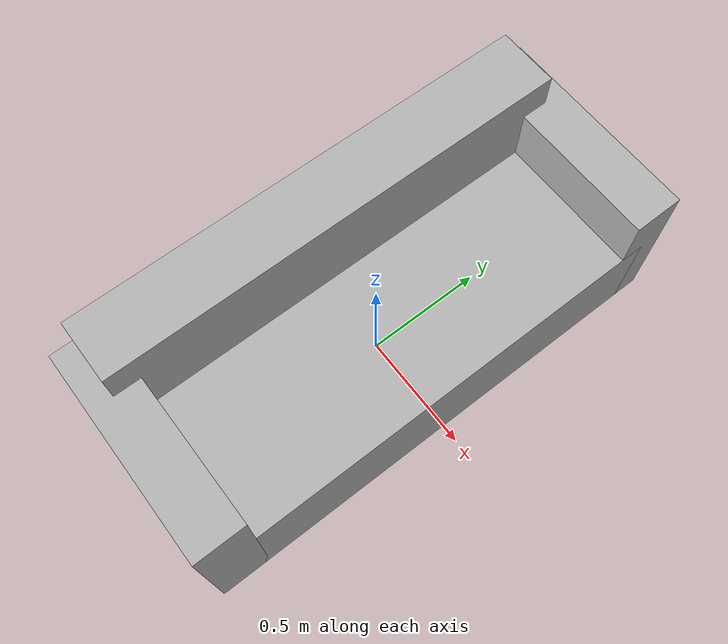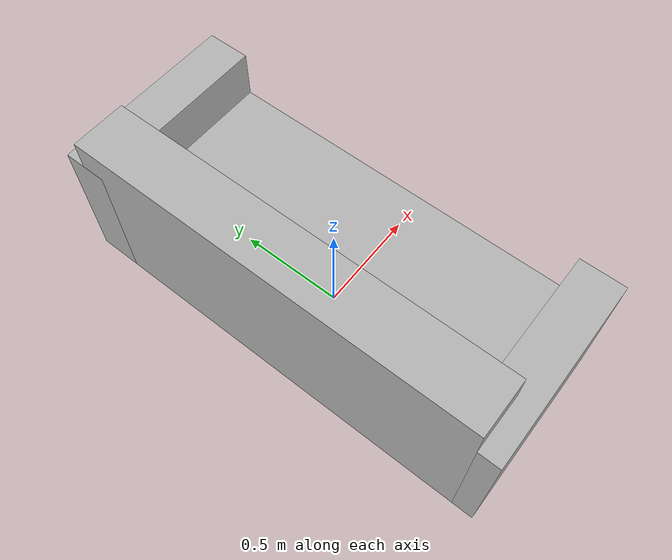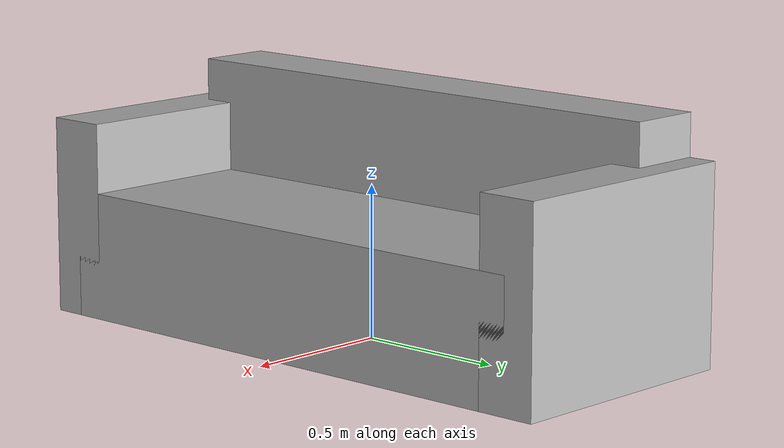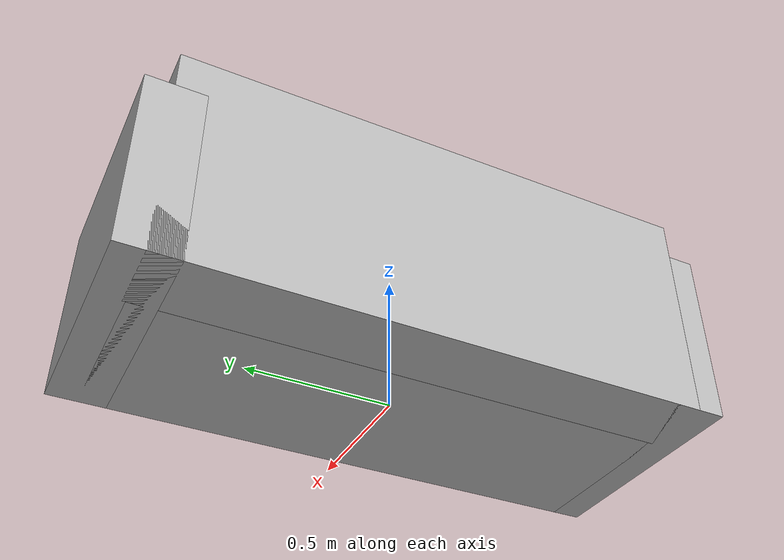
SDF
<?xml version="1.0"?>
<sdf version="1.6">
  <model name="impuls/couch_long">
    <link name="back">
      <collision name="back_col">
        <geometry>
          <box>
            <size>0.25 1.86 0.79</size>
          </box>
        </geometry>
      </collision>
      <visual name="back_vis">
        <geometry>
          <box>
            <size>0.25 1.86 0.79</size>
          </box>
        </geometry>
      </visual>
      <pose>-0.30 0.0 0.395 0 0 0</pose>
    </link>
    <link name="in_front_of">
      <virtual_volume name="in_front_of_vv">
        <geometry>
          <box>
            <size>0.2 1.6 0.01</size>
          </box>
        </geometry>
        <pose>0.65 0.0 0.005 0 0 0</pose>
      </virtual_volume>
    </link>
    <link name="side_left">
     <collision name="side_left_col">
        <geometry>
          <box>
            <size>0.85 0.20 0.65</size>
          </box>
        </geometry>
      </collision>
      <visual name="side_left_vis">
        <geometry>
          <box>
            <size>0.85 0.20 0.65</size>
          </box>
        </geometry>
      </visual>
      <pose>0 -0.925 0.325 0 0 0</pose>
    </link>
    <link name="side_right">
      <collision name="side_right_col">
        <geometry>
          <box>
            <size>0.85 0.20 0.65</size>
          </box>
        </geometry>
      </collision>
      <visual name="side_right_vis">
        <geometry>
          <box>
            <size>0.85 0.20 0.65</size>
          </box>
        </geometry>
      </visual>
    <pose>0 0.925 0.325 0 0 0</pose>
    </link>
    <link name="seat">
      <collision name="seat_col">
        <geometry>
          <box>
            <size>0.6 1.84 0.42</size>
          </box>
        </geometry>
      </collision>
      <visual name="seat_vis">
        <geometry>
          <box>
              <size>0.6 1.84 0.42</size>
          </box>
        </geometry>
      </visual>
      <pose>0.125 0 0.21 0 0 0</pose>
    </link>
    <link name="on_top_of">
      <virtual_volume name="on_top_of_vv">
        <geometry>
          <box>
            <size>0.60 1.64 0.3</size>
          </box>
        </geometry>
        <pose>0.125 0.0 0.57 0 0 0</pose>
      </virtual_volume>
    </link>
    <link name="on_top_of_couch_long_left">
     <virtual_volume name="on_top_of_couch_long_left_vv">
        <geometry>
          <box>
            <size>0.60 0.80 0.3</size>
          </box>
        </geometry>
        <pose>0.125 0.41 0.57 0 0 0</pose>
      </virtual_volume>
    </link>
    <link name="on_top_of_couch_long_right">
      <virtual_volume name="on_top_of_couch_long_right_vv">
        <geometry>
          <box>
            <size>0.60 0.80 0.3</size>
          </box>
        </geometry>
        <pose>0.125 -0.41 0.57 0 0 0</pose>
      </virtual_volume>
    </link>
    <static>true</static>
  </model>
</sdf>
